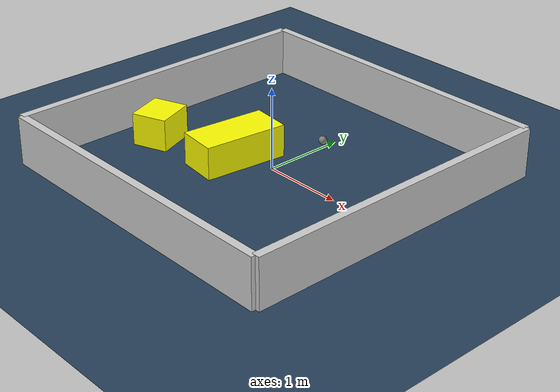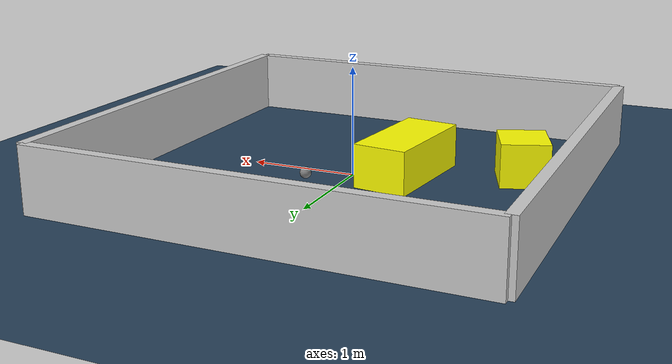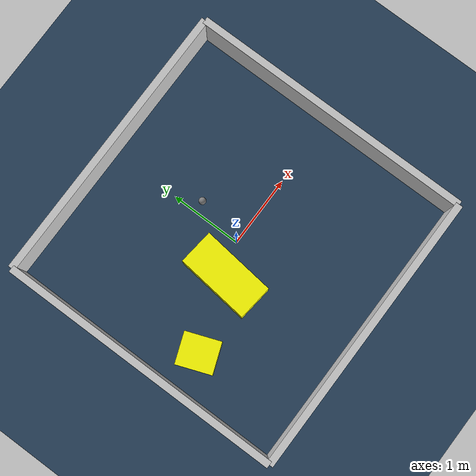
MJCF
<?xml version="1.0" ?>
<mujoco model="generated_environment">
  <option timestep="0.01" integrator="RK4" cone="elliptic"/>
  <default>
    <geom density="1"/>
  </default>
  <asset>
    <texture builtin="gradient" height="3072" rgb1="0.3 0.5 0.7" rgb2="0 0 0" type="skybox" width="512"/>
    <texture builtin="checker" height="300" mark="edge" markrgb="0.8 0.8 0.8" name="groundplane" rgb1="0.2 0.3 0.4" rgb2="0.1 0.2 0.3" type="2d" width="300"/>
    <material name="groundplane" reflectance="0.2" texrepeat="5 5" texture="groundplane" texuniform="true"/>
    <material name="robot" rgba="0.0 1.0 0.0 1"/>
  </asset>
  <worldbody>
    <light dir="0 0 -1" directional="true" pos="0 0 1.5"/>
    <geom condim="4" friction="1.0 0.005 0.001" material="groundplane" name="floor" size="0 0 0.05" type="plane"/>
    <body name="walls">
      <geom name="wall_1" condim="4" pos="-2.0 0.0 0.3" rgba="0.800000011920929 0.800000011920929 0.800000011920929 1.0" size="0.05 2.0 0.3" type="box"/>
      <geom name="wall_2" condim="4" pos="2.0 0.0 0.3" rgba="0.800000011920929 0.800000011920929 0.800000011920929 1.0" size="0.05 2.0 0.3" type="box"/>
      <geom name="wall_3" condim="4" pos="0.0 -2.0 0.3" rgba="0.800000011920929 0.800000011920929 0.800000011920929 1.0" size="2.0 0.05 0.3" type="box"/>
      <geom name="wall_4" condim="4" pos="0.0 2.0 0.3" rgba="0.800000011920929 0.800000011920929 0.800000011920929 1.0" size="2.0 0.05 0.3" type="box"/>
    </body>
    <body name="robot">
      <joint name="joint_x" type="slide" pos="0 0 0" axis="1 0 0"/>
      <joint name="joint_y" type="slide" pos="0 0 0" axis="0 1 0"/>
      <geom name="robot" type="sphere" pos="0.1486376476763147 0.6592531650611724 0.2" size="0.05" mass="5." friction="1.0 0.005 0.0001" condim="4"/>
      <site name="sensor_ball"/>
    </body>
    <body name="obstacle_1_movable">
      <geom name="obstacle_1_movable" condim="4" pos="-0.4530451568801288 -0.16704362508227755 0.2" euler="0 0 263.4925879042185" friction="1.0 0.005 0.001" rgba="1 1 0 1" size="0.5195389674615452 0.2483770800511359 0.2" type="box" mass="0.1"/>
      <joint type="free"/>
    </body>
    <body name="obstacle_2_movable">
      <geom name="obstacle_2_movable" condim="4" pos="-1.4410185074938484 -0.4846936943891518 0.2" euler="0 0 200.51827028971817" friction="1.0 0.005 0.001" rgba="1 1 0 1" size="0.22068736798957042 0.2486240865924661 0.2" type="box" mass="0.1"/>
      <joint type="free"/>
    </body>
  </worldbody>
  <actuator>
    <motor name="actuator_x" joint="joint_x" gear="1" ctrlrange="-1 1"/>
    <motor name="actuator_y" joint="joint_y" gear="1" ctrlrange="-1 1"/>
  </actuator>
</mujoco>
